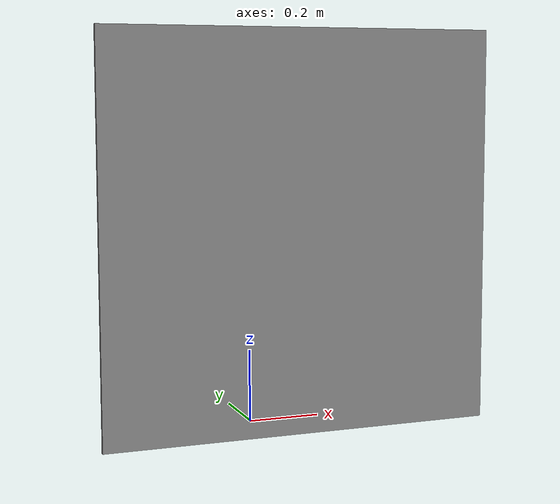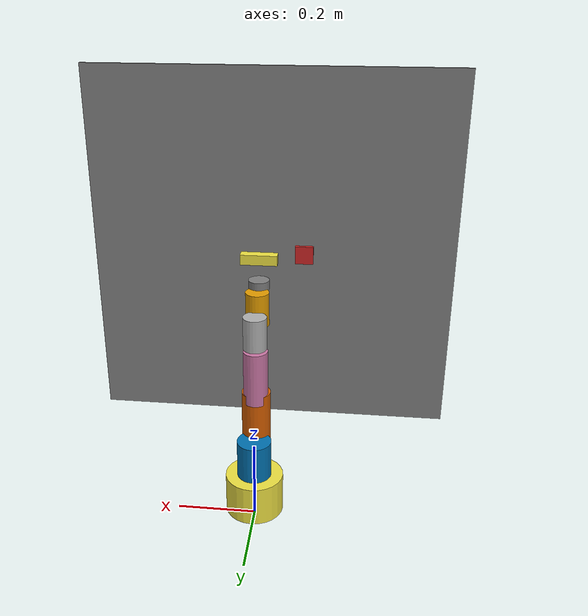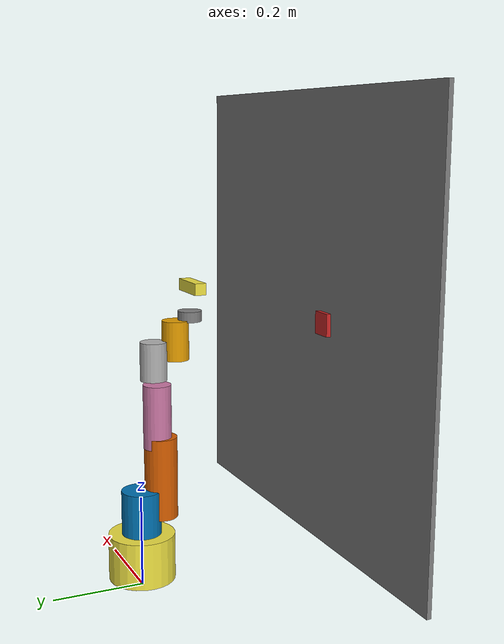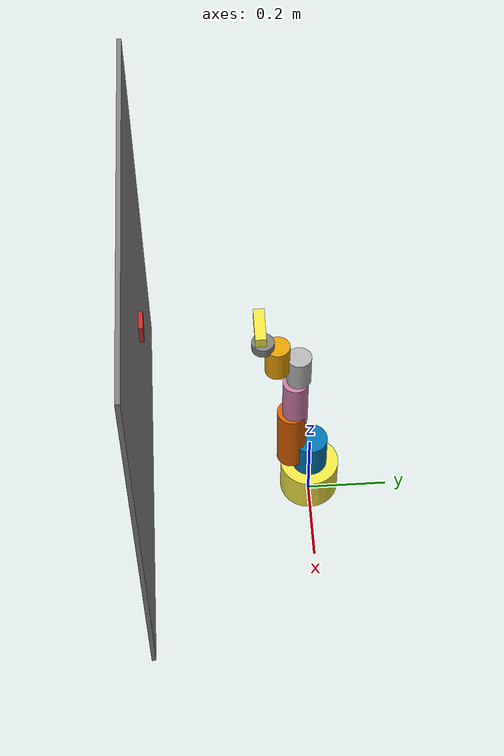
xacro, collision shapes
<?xml version="1.0" ?>
<robot xmlns:xacro="http://www.ros.org/wiki/xacro" name="firefighter">
    <xacro:include filename="$(find mycobot_description)/urdf/mycobot_320_pi_2022/camera/depthcam.xacro"/>
    <xacro:include filename="$(find mycobot_description)/urdf/mycobot_320_pi_2022/wall.xacro"/>

    <link name="world"/>
    <joint name="world_to_base" type="fixed">
        <parent link="world"/>
        <child link="base"/>
        <origin xyz="0 0 0.07" rpy="0 0 0"/>
    </joint>

    <link name="base">
        <visual>
            <geometry>
                <mesh filename="package://mycobot_description/urdf/mycobot_320_pi_2022/ade/base.dae" />
            </geometry>
            <origin xyz="0.0 0.0 0.0 " rpy=" 0 0 1.5708" />
        </visual>
        <collision>
            <origin xyz="0.0 0.0 0.0 " rpy=" 0 0 1.5708" />
            <geometry>
                <cylinder length="0.102" radius="0.0725" />
            </geometry>
        </collision>
        <inertial>
            <mass value="50" />
            <origin xyz="0 0 0" rpy="0 0 0" />
            <inertia ixx="0.001" iyy="0.001" izz="0.001" ixy="0.0" ixz="0.0" iyz="0.0" />
        </inertial>
    </link>

    <link name="link1">
        <visual>
            <geometry>
                <mesh filename="package://mycobot_description/urdf/mycobot_320_pi_2022/ade/link1.dae" />
            </geometry>
            <origin xyz="0.0 0.0 -0.078 " rpy=" 0 0 1.5708" />
        </visual>
        <collision>
            <origin xyz="0.0 0.0 -0.078 " rpy=" 0 0 1.5708" />
            <geometry>
                <cylinder length="0.106" radius="0.043" />
            </geometry>
        </collision>
        <inertial>
            <mass value="0.5" />
            <origin xyz="0 0 0" rpy="0 0 0" />
            <inertia ixx="0.001" iyy="0.001" izz="0.001" ixy="0.0" ixz="0.0" iyz="0.0" />
        </inertial>
    </link>

    <link name="link2">
        <visual>
            <geometry>
                <mesh filename="package://mycobot_description/urdf/mycobot_320_pi_2022/ade/link2.dae" />
            </geometry>
            <origin xyz="0.0 0.0 -0.04 " rpy=" 0 1.5708 0" />
        </visual>
        <collision>
            <origin xyz="0.0 0.0 -0.04 " rpy=" 0 1.5708 0" />
            <geometry>
                <cylinder length="0.18" radius="0.036" />
            </geometry>
        </collision>
        <inertial>
            <mass value="0.5" />
            <origin xyz="0 0 0" rpy="0 0 0" />
            <inertia ixx="0.001" iyy="0.001" izz="0.001" ixy="0.0" ixz="0.0" iyz="0.0" />
        </inertial>
    </link>

    <link name="link3">
        <visual>
            <geometry>
                <mesh filename="package://mycobot_description/urdf/mycobot_320_pi_2022/ade/link3.dae" />
            </geometry>
            <origin xyz="0.0 0.0 0.039 " rpy=" 1.5708 1.5708 1.5708" />
        </visual>
        <collision>
            <origin xyz="0.0 0.0 0.039 " rpy=" 1.5708 1.5708 1.5708" />
            <geometry>
                <cylinder length="0.14" radius="0.0305" />
            </geometry>
        </collision>
        <inertial>
            <mass value="0.5" />
            <origin xyz="0 0 0" rpy="0 0 0" />
            <inertia ixx="0.001" iyy="0.001" izz="0.001" ixy="0.0" ixz="0.0" iyz="0.0" />
        </inertial>
    </link>

    <link name="link4">
        <visual>
            <geometry>
                <mesh filename="package://mycobot_description/urdf/mycobot_320_pi_2022/ade/link4.dae" />
            </geometry>
            <origin xyz="0.0 -0.0024 -0.05" rpy=" 1.5708 1.5708 0" />
        </visual>
        <collision>
            <origin xyz="0.0 -0.0024 -0.05" rpy=" 1.5708 1.5708 0" />
            <geometry>
                <cylinder length="0.083" radius="0.029" />
            </geometry>
        </collision>
        <inertial>
            <mass value="0.5" />
            <origin xyz="0 0 0" rpy="0 0 0" />
            <inertia ixx="0.001" iyy="0.001" izz="0.001" ixy="0.0" ixz="0.0" iyz="0.0" />
        </inertial>
    </link>

    <link name="link5">
        <visual>
            <geometry>
                <mesh filename="package://mycobot_description/urdf/mycobot_320_pi_2022/ade/link5.dae" />
            </geometry>
            <origin xyz="0.0 0.0 -0.05 " rpy=" 0  0 -1.5708" />
        </visual>
        <collision>
            <origin xyz="0.0 0.0 -0.05 " rpy=" 0  0 -1.5708" />
            <geometry>
                <cylinder length="0.0849" radius="0.029" />
            </geometry>
        </collision>
        <inertial>
            <mass value="0.5" />
            <origin xyz="0 0 0" rpy="0 0 0" />
            <inertia ixx="0.001" iyy="0.001" izz="0.001" ixy="0.0" ixz="0.0" iyz="0.0" />
        </inertial>
    </link>

    <link name="link6">
        <visual>
            <geometry>
                <mesh filename="package://mycobot_description/urdf/mycobot_320_pi_2022/ade/link6.dae" />
            </geometry>
            <material name="grey">
                <color rgba="0.5 0.5 0.5 1" />
            </material>
            <origin xyz="0.0 0.0 -0.022 " rpy=" 1.5708 1.5708 0" />
        </visual>
        <collision>
            <origin xyz="0.0 0.0 -0.022 " rpy=" 1.5708 1.5708 0" />
            <geometry>
                <cylinder length="0.0225" radius="0.026" />
            </geometry>
        </collision>
        <inertial>
            <mass value="0.5" />
            <origin xyz="0 0 0" rpy="0 0 0" />
            <inertia ixx="0.001" iyy="0.001" izz="0.001" ixy="0.0" ixz="0.0" iyz="0.0" />
        </inertial>
    </link>

    <xacro:realsense_d435 sensor_name="d435" parent_link="link6" rate="10">
      <origin rpy="0 -1.5708 1.5708 " xyz="0 -0.05 -0.015"/>
    </xacro:realsense_d435>

    <joint name="joint2_to_joint1" type="revolute">
        <axis xyz="0 0 1" />
        <limit effort="5000.0" lower="-2.96" upper="2.96" velocity="2.0" />
        <parent link="base" />
        <child link="link1" />
        <origin xyz="0 0 0.173" rpy="0 0 0" />
    </joint>

    <joint name="joint3_to_joint2" type="revolute">
        <axis xyz="0 0 1" />
        <limit effort="5000.0" lower="-2.79" upper="2.79" velocity="2.0" />
        <parent link="link1" />
        <child link="link2" />
        <origin xyz="0 -0.086  0" rpy="0 -1.57080  1.57080" />
    </joint>

    <joint name="joint4_to_joint3" type="revolute">
        <axis xyz=" 0 0 1" />
        <limit effort="5000.0" lower="-2.79" upper="2.79" velocity="2.0" />
        <parent link="link2" />
        <child link="link3" />
        <origin xyz="0.13635 0 -0.086   " rpy="0 0 0" />
    </joint>

    <joint name="joint5_to_joint4" type="revolute">
        <axis xyz=" 0 0 1" />
        <limit effort="5000.0" lower="-2.79" upper="2.79" velocity="2.0" />
        <parent link="link3" />
        <child link="link4" />
        <origin xyz="0.1195 0  0.082" rpy="0 0 1.57080" />
    </joint>

    <joint name="joint6_to_joint5" type="revolute">
        <axis xyz="0 0 1" />
        <limit effort="5000.0" lower="-2.96" upper="2.96" velocity="2.0" />
        <parent link="link4" />
        <child link="link5" />
        <origin xyz="0 -0.09415 0" rpy="1.57080 0 0" />
    </joint>

    <joint name="joint6output_to_joint6" type="revolute">
        <axis xyz="0 0 1" />
        <limit effort="5000.0" lower="-3.05" upper="3.05" velocity="2.0" />
        <parent link="link5" />
        <child link="link6" />
        <origin xyz="0 0.055 0" rpy="-1.57080 0 0 " />
    </joint>

    <transmission name="trans_joint2_to_joint1">
        <type>transmission_interface/SimpleTransmission</type>
        <joint name="joint2_to_joint1">
            <hardwareInterface>hardware_interface/EffortJointInterface</hardwareInterface>
        </joint>
        <actuator name="joint2_to_joint1_motor">
            <hardwareInterface>hardware_interface/EffortJointInterface</hardwareInterface>
            <mechanicalReduction>1</mechanicalReduction>
        </actuator>
    </transmission>

    <transmission name="trans_joint3_to_joint2">
        <type>transmission_interface/SimpleTransmission</type>
        <joint name="joint3_to_joint2">
            <hardwareInterface>hardware_interface/EffortJointInterface</hardwareInterface>
        </joint>
        <actuator name="joint3_to_joint2_motor">
            <hardwareInterface>hardware_interface/EffortJointInterface</hardwareInterface>
            <mechanicalReduction>1</mechanicalReduction>
        </actuator>
    </transmission>

    <transmission name="trans_joint4_to_joint3">
        <type>transmission_interface/SimpleTransmission</type>
        <joint name="joint4_to_joint3">
            <hardwareInterface>hardware_interface/EffortJointInterface</hardwareInterface>
        </joint>
        <actuator name="joint4_to_joint3_motor">
            <hardwareInterface>hardware_interface/EffortJointInterface</hardwareInterface>
            <mechanicalReduction>1</mechanicalReduction>
        </actuator>
    </transmission>

    <transmission name="trans_joint5_to_joint4">
        <type>transmission_interface/SimpleTransmission</type>
        <joint name="joint5_to_joint4">
            <hardwareInterface>hardware_interface/EffortJointInterface</hardwareInterface>
        </joint>
        <actuator name="joint5_to_joint4_motor">
            <hardwareInterface>hardware_interface/EffortJointInterface</hardwareInterface>
            <mechanicalReduction>1</mechanicalReduction>
        </actuator>
    </transmission>

    <transmission name="trans_joint6_to_joint5">
        <type>transmission_interface/SimpleTransmission</type>
        <joint name="joint6_to_joint5">
            <hardwareInterface>hardware_interface/EffortJointInterface</hardwareInterface>
        </joint>
        <actuator name="joint6_to_joint5_motor">
            <hardwareInterface>hardware_interface/EffortJointInterface</hardwareInterface>
            <mechanicalReduction>1</mechanicalReduction>
        </actuator>
    </transmission>

    <transmission name="trans_joint6output_to_joint6">
        <type>transmission_interface/SimpleTransmission</type>
        <joint name="joint6output_to_joint6">
            <hardwareInterface>hardware_interface/EffortJointInterface</hardwareInterface>
        </joint>
        <actuator name="joint6output_to_joint6_motor">
            <hardwareInterface>hardware_interface/EffortJointInterface</hardwareInterface>
            <mechanicalReduction>1</mechanicalReduction>
        </actuator>
    </transmission>

    <gazebo>
        <plugin name="gazebo_ros_control" filename="libgazebo_ros_control.so">
            <robotNamespace>/</robotNamespace>
        </plugin>
    </gazebo>

</robot>

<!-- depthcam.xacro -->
<robot xmlns:xacro="http://www.ros.org/wiki/xacro">

  <xacro:include filename="$(find mycobot_description)/urdf/mycobot_320_pi_2022/camera/inertia_calc.xacro"/>

  <!-- INTEL REALSENSE D435 -->

  <xacro:macro name="realsense_d435" params="sensor_name parent_link *origin rate">

    <xacro:property name="d435_cam_depth_to_left_ir_offset" value="0.0"/>
    <xacro:property name="d435_cam_depth_to_right_ir_offset" value="-0.050"/>
    <xacro:property name="d435_cam_depth_to_color_offset" value="0.015"/>
    <xacro:property name="d435_cam_width" value="0.090"/>
    <xacro:property name="d435_cam_height" value="0.025"/>
    <xacro:property name="d435_cam_depth" value="0.02505"/>
    <xacro:property name="d435_cam_mass" value="0.5"/>
    <xacro:property name="d435_cam_mount_from_center_offset" value="0.0149"/>
    <xacro:property name="d435_cam_depth_px" value="${d435_cam_mount_from_center_offset}"/>
    <xacro:property name="d435_cam_depth_py" value="0.0175"/>
    <xacro:property name="d435_cam_depth_pz" value="${d435_cam_height/2}"/>

    <!-- camera body, with origin at bottom screw mount -->
    <joint name="${sensor_name}_joint" type="fixed">
      <xacro:insert_block name="origin" />
      <parent link="${parent_link}"/>
      <child link="${sensor_name}_bottom_screw_frame" />
    </joint>
    <link name="${sensor_name}_bottom_screw_frame"/>

    <joint name="${sensor_name}_link_joint" type="fixed">
      <origin xyz="0 ${d435_cam_depth_py} ${d435_cam_depth_pz}" rpy="0 0 0"/>
      <parent link="${sensor_name}_bottom_screw_frame"/>
      <child link="${sensor_name}_link" />
    </joint>

    <link name="${sensor_name}_link">
      <visual>
        <origin xyz="${d435_cam_mount_from_center_offset} ${-d435_cam_depth_py} 0" rpy="${pi/2} 0 ${pi/2}"/>
        <geometry>
          <mesh filename="package://mycobot_description/urdf/mycobot_320_pi_2022/camera/realsense_d435.stl" />
        </geometry>
      </visual>
      <collision>
        <origin xyz="0 ${-d435_cam_depth_py} 0" rpy="0 0 0"/>
        <geometry>
          <box size="${d435_cam_depth} ${d435_cam_width} ${d435_cam_height}"/>
        </geometry>
      </collision>
      <inertial>
        <mass value="${d435_cam_mass}" />
        <origin xyz="0 ${-d435_cam_depth_py} 0" rpy="0 0 0"/>
        <xacro:box_inertia m="${d435_cam_mass}" x="${d435_cam_depth}" y="${d435_cam_width}" z="${d435_cam_height}"/>
      </inertial>
    </link>

    <!-- camera depth joints and links -->
    <joint name="${sensor_name}_depth_joint" type="fixed">
      <origin xyz="0 0 0" rpy="0 0 0"/>
      <parent link="${sensor_name}_link"/>
      <child link="${sensor_name}_depth_frame" />
    </joint>
    <link name="${sensor_name}_depth_frame"/>

    <joint name="${sensor_name}_depth_optical_joint" type="fixed">
      <origin xyz="0 0 0" rpy="${-pi/2} 0 ${-pi/2}" />
      <parent link="${sensor_name}_depth_frame" />
      <child link="${sensor_name}_depth_optical_frame" />
    </joint>
    <link name="${sensor_name}_depth_optical_frame"/>

    <!-- camera left IR joints and links -->
    <joint name="${sensor_name}_left_ir_joint" type="fixed">
      <origin xyz="0 ${d435_cam_depth_to_left_ir_offset} 0" rpy="0 0 0" />
      <parent link="${sensor_name}_depth_frame" />
      <child link="${sensor_name}_left_ir_frame" />
    </joint>
    <link name="${sensor_name}_left_ir_frame"/>

    <joint name="${sensor_name}_left_ir_optical_joint" type="fixed">
      <origin xyz="0 0 0" rpy="${-pi/2} 0 ${-pi/2}" />
      <parent link="${sensor_name}_left_ir_frame" />
      <child link="${sensor_name}_left_ir_optical_frame" />
    </joint>
    <link name="${sensor_name}_left_ir_optical_frame"/>

    <!-- camera right IR joints and links -->
    <joint name="${sensor_name}_right_ir_joint" type="fixed">
      <origin xyz="0 ${d435_cam_depth_to_right_ir_offset} 0" rpy="0 0 0" />
      <parent link="${sensor_name}_depth_frame" />
      <child link="${sensor_name}_right_ir_frame" />
    </joint>
    <link name="${sensor_name}_right_ir_frame"/>

    <joint name="${sensor_name}_right_ir_optical_joint" type="fixed">
      <origin xyz="0 0 0" rpy="${-pi/2} 0 ${-pi/2}" />
      <parent link="${sensor_name}_right_ir_frame" />
      <child link="${sensor_name}_right_ir_optical_frame" />
    </joint>
    <link name="${sensor_name}_right_ir_optical_frame"/>

    <!-- camera color joints and links -->
    <joint name="${sensor_name}_color_joint" type="fixed">
      <origin xyz="0 ${d435_cam_depth_to_color_offset} 0" rpy="0 0 0" />
      <parent link="${sensor_name}_depth_frame" />
      <child link="${sensor_name}_color_frame" />
    </joint>
    <link name="${sensor_name}_color_frame"/>

    <joint name="${sensor_name}_color_optical_joint" type="fixed">
      <origin xyz="0 0 0" rpy="${-pi/2} 0 ${-pi/2}" />
      <parent link="${sensor_name}_color_frame" />
      <child link="${sensor_name}_color_optical_frame" />
    </joint>
    <link name="${sensor_name}_color_optical_frame"/>

    <!-- gazebo plugin -->

    <xacro:property name="deg_to_rad" value="0.01745329251994329577" />

    <gazebo reference="${sensor_name}_link">
      <self_collide>0</self_collide>
      <enable_wind>0</enable_wind>
      <kinematic>0</kinematic>
      <gravity>1</gravity>
      <mu2>1</mu2>
      <fdir1>0 0 0</fdir1>
      <kp>1e+13</kp>
      <kd>1</kd>

      <sensor name="${sensor_name}_color" type="camera">
        <camera name="${sensor_name}">
          <horizontal_fov>${30*deg_to_rad}</horizontal_fov> <!--这里就应该是30度的视野角度，不知道为啥要写69.4-->
          <image>
            <width>640</width>
            <height>480</height>
            <format>RGB_INT8</format>
          </image>
          <clip>
            <near>0.1</near>
            <far>100</far>
          </clip>
          <noise>
            <type>gaussian</type>
            <mean>0.0</mean>
            <stddev>0.007</stddev>
          </noise>
        </camera>
        <always_on>1</always_on>
        <update_rate>30</update_rate>
        <visualize>1</visualize>
      </sensor>
      <sensor name="${sensor_name}_ired1" type="camera">
        <camera name="${sensor_name}">
          <horizontal_fov>${85.2*deg_to_rad}</horizontal_fov>
          <image>
            <width>1280</width>
            <height>720</height>
            <format>L_INT8</format>
          </image>
          <clip>
            <near>0.1</near>
            <far>100</far>
          </clip>
          <noise>
            <type>gaussian</type>
            <mean>0.0</mean>
            <stddev>0.05</stddev>
          </noise>
        </camera>
        <always_on>1</always_on>
        <update_rate>90</update_rate>
        <visualize>0</visualize>
      </sensor>
      <sensor name="${sensor_name}_ired2" type="camera">
        <camera name="${sensor_name}">
          <horizontal_fov>${85.2*deg_to_rad}</horizontal_fov>
          <image>
            <width>1280</width>
            <height>720</height>
            <format>L_INT8</format>
          </image>
          <clip>
            <near>0.1</near>
            <far>100</far>
          </clip>
          <noise>
            <type>gaussian</type>
            <mean>0.0</mean>
            <stddev>0.05</stddev>
          </noise>
        </camera>
        <always_on>1</always_on>
        <update_rate>90</update_rate>
        <visualize>0</visualize>
      </sensor>
      <sensor name="${sensor_name}_depth" type="depth">
        <camera name="${sensor_name}">
          <horizontal_fov>${85.2*deg_to_rad}</horizontal_fov>
          <image>
            <width>1280</width>
            <height>720</height>
          </image>
          <clip>
            <near>0.1</near>
            <far>100</far>
          </clip>
          <noise>
            <type>gaussian</type>
            <mean>0.0</mean>
            <stddev>0.100</stddev>
          </noise>
        </camera>
        <always_on>1</always_on>
        <update_rate>90</update_rate>
        <visualize>0</visualize>
      </sensor>
      <sensor name="imu_sensor" type="imu">
        <always_on>true</always_on>
        <update_rate>200</update_rate>
        <visualize>true</visualize>
        <topic>__default_topic__</topic>
        <plugin filename="libgazebo_ros_imu_sensor.so" name="imu_plugin">
          <topicName>d435i/imu</topicName>
          <bodyName>camera_link</bodyName>
          <updateRateHZ>200.0</updateRateHZ>
          <gaussianNoise>0.0</gaussianNoise>
          <xyzOffset>0.0 0.0 0.0</xyzOffset>
          <rpyOffset>0.0 0.0 0.0</rpyOffset>
          <frameName>imu_link_</frameName>
        </plugin>
        <pose>0 0 0 0 0 0</pose>
      </sensor>
    </gazebo>

    <gazebo>
      <plugin name="${sensor_name}" filename="librealsense_gazebo_plugin.so">
        <prefix>${sensor_name}_</prefix>
        <depthUpdateRate>${rate}</depthUpdateRate>
        <colorUpdateRate>${rate}</colorUpdateRate>
        <infraredUpdateRate>${rate}</infraredUpdateRate>
        <depthTopicName>depth/image_raw</depthTopicName>
        <depthCameraInfoTopicName>depth/camera_info</depthCameraInfoTopicName>
        <colorTopicName>color/image_raw</colorTopicName>
        <colorCameraInfoTopicName>color/camera_info</colorCameraInfoTopicName>
        <infrared1TopicName>infra1/image_raw</infrared1TopicName>
        <infrared1CameraInfoTopicName>infra1/camera_info</infrared1CameraInfoTopicName>
        <infrared2TopicName>infra2/image_raw</infrared2TopicName>
        <infrared2CameraInfoTopicName>infra2/camera_info</infrared2CameraInfoTopicName>
        <colorOpticalframeName>${sensor_name}_color_optical_frame</colorOpticalframeName>
        <depthOpticalframeName>${sensor_name}_depth_optical_frame</depthOpticalframeName>
        <infrared1OpticalframeName>${sensor_name}_infrared1_optical_frame</infrared1OpticalframeName>
        <infrared2OpticalframeName>${sensor_name}_infrared2_optical_frame</infrared2OpticalframeName>
        <rangeMinDepth>0.2</rangeMinDepth>
        <rangeMaxDepth>10.0</rangeMaxDepth>
        <pointCloud>false</pointCloud>
        <pointCloudTopicName>depth/color/points</pointCloudTopicName>
        <pointCloudCutoff>0.25</pointCloudCutoff>
        <pointCloudCutoffMax>9.0</pointCloudCutoffMax>
      </plugin>
    </gazebo>

  </xacro:macro>

</robot>

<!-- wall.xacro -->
<robot xmlns:xacro="http://www.ros.org/wiki/xacro">

  <!-- add table -->
  <link name="wall">
    <visual>
      <origin xyz="0 -0.4 0.5" rpy="0 0 0" />
      <geometry >
	<box size="1 0.01 1" />
      </geometry>
      <material name="grey">
        <color rgba="0.5 0.5 0.5 1" />
      </material>
    </visual>
    <collision>
      <origin xyz="0 -0.4 0.5" rpy="0 0 0" />
      <geometry >
        <box size="1 0.01 1" />
      </geometry>
    </collision>
    <inertial>
      <mass value="0.5"/>
      <inertia ixx="0.001" ixy="0.0" ixz="0.0" iyy="0.001" iyz="0.0" izz="0.001"/>
    </inertial>
  </link>

  <joint name="wall_pos" type="fixed">
      <parent link="base"/>
      <child link="wall"/>
  </joint>

  <!-- add table -->
  <link name="buttom">
    <visual>
      <origin xyz="-0.09 -0.39 0.5" rpy="0 0 0" />
      <geometry >
	<box size="0.05 0.01 0.05" />
      </geometry>

    </visual>
    <collision>
      <origin xyz="-0.09 -0.39 0.5" rpy="0 0 0" />
      <geometry >
        <box size="0.05 0.01 0.05" />
      </geometry>
    </collision>
    <inertial>
      <mass value="0.5"/>
      <inertia ixx="0.001" ixy="0.0" ixz="0.0" iyy="0.001" iyz="0.0" izz="0.001"/>
    </inertial>
  </link>

  <joint name="buttom_pos" type="fixed">
      <parent link="wall"/>
      <child link="buttom"/>
  </joint>

  <gazebo reference="wall">
       <material>Gazebo/LightGray</material>
  </gazebo>

  <gazebo reference="buttom">
       <material>Gazebo/Red</material>
  </gazebo>

</robot>
